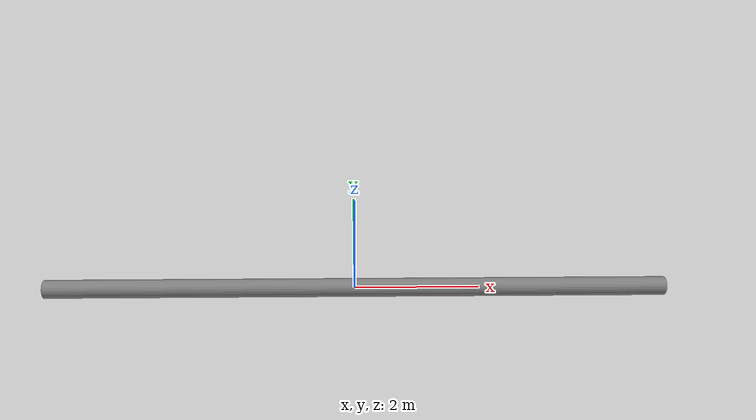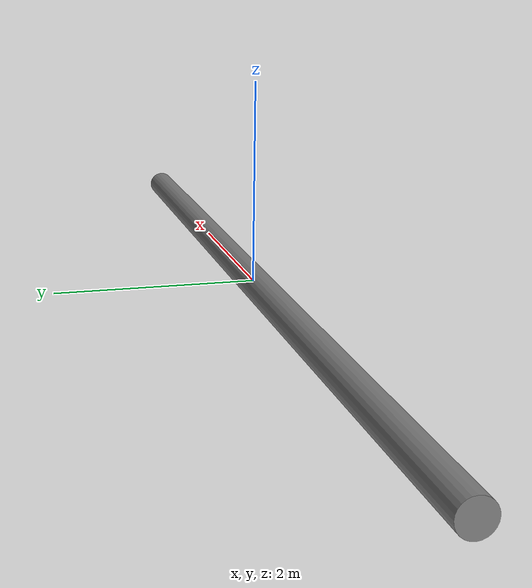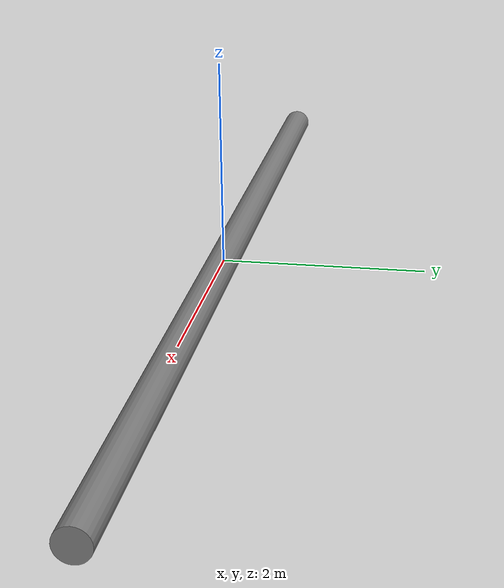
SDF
<?xml version="1.0" ?>
<sdf version="1.9">
  <model name="straight_tube">
    <static>false</static>

    <link name="tube_link">
      <gravity>false</gravity>
      <kinematic>true</kinematic>
      <!-- 水平放置 -->
      <pose>0 0 0 0 1.5708 0</pose>
      <visual name="tube_visual">
        <geometry>
          <!-- 圆柱体：长10m，半径0.15m（直径30cm） -->
          <!-- Gazebo Harmonic 中 cylinder 沿 Z 轴放置 -->
          <cylinder>
            <radius>0.15</radius>
            <length>10.0</length>
          </cylinder>
        </geometry>
        <material>
          <!-- 灰色 -->
          <ambient>0.5 0.5 0.5 1</ambient>
          <diffuse>0.5 0.5 0.5 1</diffuse>
          <specular>0.3 0.3 0.3 1</specular>
        </material>
      </visual>

      <collision name="tube_collision">
        <geometry>
          <cylinder>
            <radius>0.15</radius>
            <length>10.0</length>
          </cylinder>
        </geometry>
      </collision>
    </link>

  </model>
</sdf>
